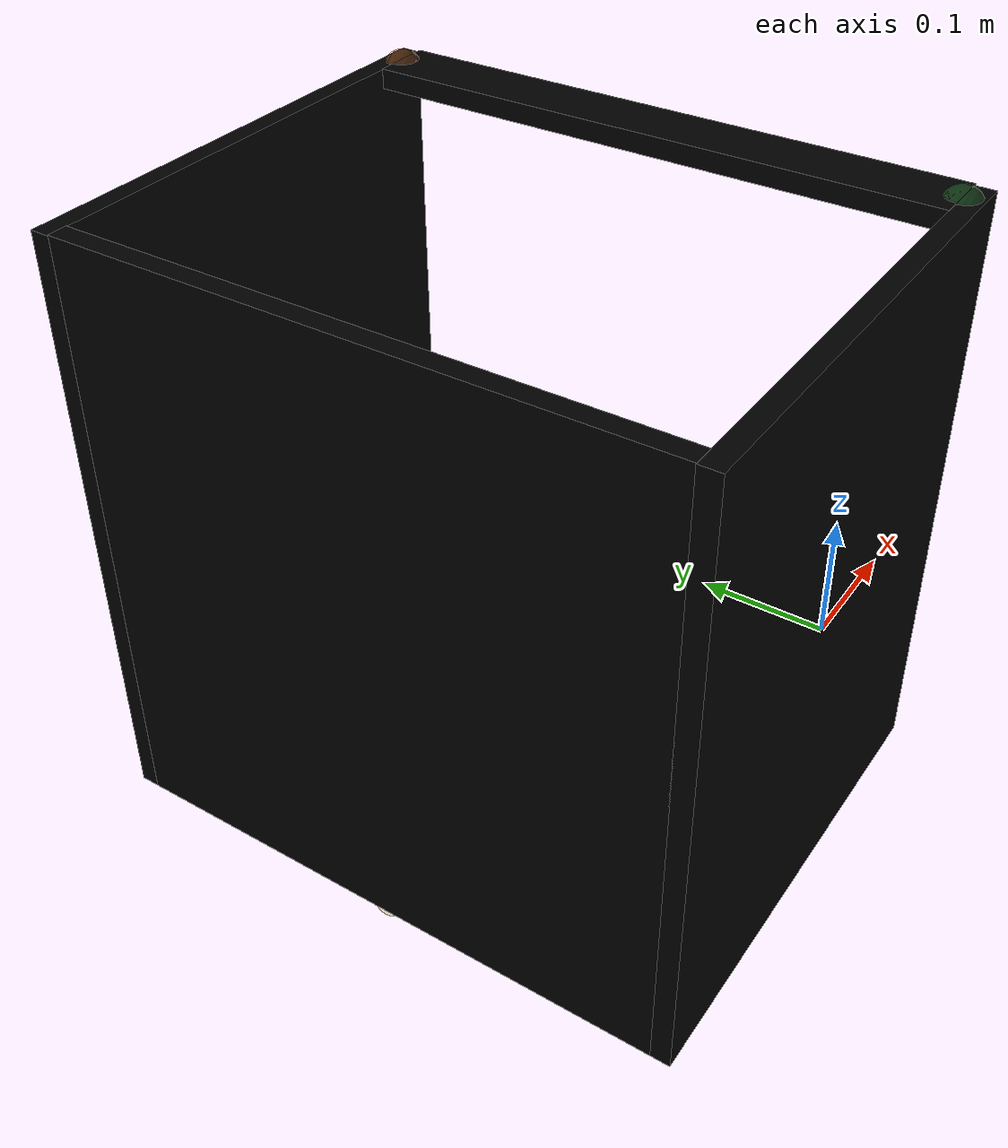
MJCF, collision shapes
<mujoco model="cabinet_akurum_0011">
    <custom>
        <numeric data="-0.34488 -0.256998 0.008911 -0.511311 -0.511311 0.488427 0.488427" name="0_part0_initpos"/>
        <numeric data="0.296876 -0.283407 0.008911 -0.011739 0.707009 0.011739 0.707009" name="4_part4_initpos"/>
        <numeric data="0.264367 0.272914 0.008911 0.709319 -0.0 0.0 0.704887" name="3_part3_initpos"/>
        <numeric data="0.677625 0.18326 0.008911 0.999946 0.0 -0.0 -0.010424" name="2_part2_initpos"/>
        <numeric data="-0.353744 0.26504 0.008369 0.498697 -0.498697 -0.5013 0.5013" name="1_part1_initpos"/>
    </custom>
    <asset>
        <mesh file="cabinet_akurum_0011/0.stl" name="part0" scale="0.00088 0.00088 0.00088"/>
        <mesh file="cabinet_akurum_0011/6.stl" name="part6" scale="0.00088 0.00088 0.00088"/>
        <mesh file="cabinet_akurum_0011/5.stl" name="part5" scale="0.00088 0.00088 0.00088"/>
        <mesh file="cabinet_akurum_0011/2.stl" name="part2" scale="0.00088 0.00088 0.00088"/>
        <mesh file="cabinet_akurum_0011/1.stl" name="part1" scale="0.00088 0.00088 0.00088"/>
    </asset>
    <equality>
        <weld active="false" body1="4_part4" body2="3_part3" solimp="1 1 0.5" solref="0.01 0.3"/>
        <weld active="false" body1="2_part2" body2="1_part1" solimp="1 1 0.5" solref="0.01 0.3"/>
        <weld active="false" body1="3_part3" body2="1_part1" solimp="1 1 0.5" solref="0.01 0.3"/>
        <weld active="false" body1="0_part0" body2="2_part2" solimp="1 1 0.5" solref="0.01 0.3"/>
        <weld active="false" body1="0_part0" body2="3_part3" solimp="1 1 0.5" solref="0.01 0.3"/>
    </equality>
    <worldbody>
        <body name="0_part0" pos="0.0 0.0 0.0" quat="1 0 0 0">
            <geom conaffinity="0" contype="0" density="0" mesh="part0" name="0_part0_mesh" pos="0.0 0.0 0.0"
                  rgba="0.82 0.71 0.55 1" type="mesh"/>
            <site name="0_part0_horizontal_radius_site" pos="0.0 0.0 0.0" quat="1 0 0 0" rgba="0 0 0 0" size="0.0176"/>
            <site name="0_part0_top_site" pos="0.0 0.0 0.2794" quat="1 0 0 0" rgba="0 0 0 0" size="0.0176"/>
            <site name="0_part0_bottom_site" pos="0.0 0.0 -0.2794" quat="1 0 0 0" rgba="0 0 0 0" size="0.0176"/>
            <site name="0_part0_corner_site8" pos="-0.22352 0.0089408 0.2794" quat="1 0 0 0" rgba="0 0 0 0"
                  size="0.0176"/>
            <site name="0_part0_corner_site7" pos="0.22352 0.0089408 0.2794" quat="1 0 0 0" rgba="0 0 0 0"
                  size="0.0176"/>
            <site name="0_part0_corner_site6" pos="0.22352 -0.0089408 0.2794" quat="1 0 0 0" rgba="0 0 0 0"
                  size="0.0176"/>
            <site name="0_part0_corner_site5" pos="-0.22352 -0.0089408 0.2794" quat="1 0 0 0" rgba="0 0 0 0"
                  size="0.0176"/>
            <site name="0_part0_corner_site4" pos="-0.22352 0.0089408 -0.2794" quat="1 0 0 0" rgba="0 0 0 0"
                  size="0.0176"/>
            <site name="0_part0_corner_site3" pos="0.22352 0.0089408 -0.2794" quat="1 0 0 0" rgba="0 0 0 0"
                  size="0.0176"/>
            <site name="0_part0_corner_site2" pos="0.22352 -0.0089408 -0.2794" quat="1 0 0 0" rgba="0 0 0 0"
                  size="0.0176"/>
            <site name="0_part0_corner_site1" pos="-0.22352 -0.0089408 -0.2794" quat="1 0 0 0" rgba="0 0 0 0"
                  size="0.0176"/>
            <site name="leftside-base,0,conn_site1" pos="0.0044704 0.00968 -0.2704592" quat="0.7071067 0.7071068 0 0"
                  rgba="0.9019 0.0980 0.2941 0.3" size="0.0176"/>
            <site name="leftside-topsupp,0,180,conn_site1" pos="0.19712000000000002 0.008976 0.2704592"
                  quat="0.7071067 0.7071068 0 0" rgba="0.2352 0.7058 0.2941 0.3" size="0.0176"/>
            <geom density="50" name="noviz_collision_0_part0_0"
                  pos="-0.0011166848000000002 0.0002710488 -0.00032344400000000004" quat="1 0 0 0" rgba="0 0 0 0"
                  size="0.22240327999999998 0.0092118488 0.27907651200000005" solref="0.001 1" type="box"/>
        </body>
        <body name="4_part4" pos="-0.2145792 0.2704592 0.0" quat="1 0 0 0">
            <geom conaffinity="0" contype="0" density="0" mesh="part6" name="4_part4_mesh" pos="0.0 0.0 0.0"
                  rgba="0.82 0.71 0.55 1" type="mesh"/>
            <site name="4_part4_horizontal_radius_site" pos="0.0 1.76e-10 0.0" quat="1 0 0 0" rgba="0 0 0 0"
                  size="0.0176"/>
            <site name="4_part4_top_site" pos="0.0 1.76e-10 0.2794" quat="1 0 0 0" rgba="0 0 0 0" size="0.0176"/>
            <site name="4_part4_bottom_site" pos="0.0 1.76e-10 -0.2794" quat="1 0 0 0" rgba="0 0 0 0" size="0.0176"/>
            <site name="4_part4_corner_site8" pos="-0.0089408 0.26151840017600003 0.2794" quat="1 0 0 0" rgba="0 0 0 0"
                  size="0.0176"/>
            <site name="4_part4_corner_site7" pos="0.0089408 0.26151840017600003 0.2794" quat="1 0 0 0" rgba="0 0 0 0"
                  size="0.0176"/>
            <site name="4_part4_corner_site6" pos="0.0089408 -0.26151839982400005 0.2794" quat="1 0 0 0" rgba="0 0 0 0"
                  size="0.0176"/>
            <site name="4_part4_corner_site5" pos="-0.0089408 -0.26151839982400005 0.2794" quat="1 0 0 0" rgba="0 0 0 0"
                  size="0.0176"/>
            <site name="4_part4_corner_site4" pos="-0.0089408 0.26151840017600003 -0.2794" quat="1 0 0 0" rgba="0 0 0 0"
                  size="0.0176"/>
            <site name="4_part4_corner_site3" pos="0.0089408 0.26151840017600003 -0.2794" quat="1 0 0 0" rgba="0 0 0 0"
                  size="0.0176"/>
            <site name="4_part4_corner_site2" pos="0.0089408 -0.26151839982400005 -0.2794" quat="1 0 0 0" rgba="0 0 0 0"
                  size="0.0176"/>
            <site name="4_part4_corner_site1" pos="-0.0089408 -0.26151839982400005 -0.2794" quat="1 0 0 0"
                  rgba="0 0 0 0" size="0.0176"/>
            <site name="backside-base,0,conn_site1" pos="0.0092751912 0.0 -0.28072" quat="0.7071067 0 -0.7071068 0"
                  rgba="1.0 0.8823 0.0980 0.3" size="0.0176"/>
            <geom density="50" name="noviz_collision_4_part4_0" pos="0.0 0.0 0.0" quat="1 0 0 0" rgba="0 0 0 0"
                  size="0.0089408 0.2615184 0.2794" solref="0.001 1" type="box"/>
        </body>
        <body name="3_part3" pos="0.0089408 0.2704592 -0.27045919674400004" quat="1 0 0 0">
            <geom conaffinity="0" contype="0" density="0" mesh="part5" name="3_part3_mesh" pos="0.0 0.0 0.0"
                  rgba="0.82 0.71 0.55 1" type="mesh"/>
            <site name="3_part3_horizontal_radius_site" pos="1.76e-10 1.76e-10 0.0" quat="1 0 0 0" rgba="0 0 0 0"
                  size="0.0176"/>
            <site name="3_part3_top_site" pos="1.76e-10 1.76e-10 0.008940803256000001" quat="1 0 0 0" rgba="0 0 0 0"
                  size="0.0176"/>
            <site name="3_part3_bottom_site" pos="1.76e-10 1.76e-10 -0.008940803256000001" quat="1 0 0 0" rgba="0 0 0 0"
                  size="0.0176"/>
            <site name="3_part3_corner_site8" pos="-0.21457919982399998 0.26151840017600003 0.008940803256000001"
                  quat="1 0 0 0" rgba="0 0 0 0" size="0.0176"/>
            <site name="3_part3_corner_site7" pos="0.214579200176 0.26151840017600003 0.008940803256000001"
                  quat="1 0 0 0" rgba="0 0 0 0" size="0.0176"/>
            <site name="3_part3_corner_site6" pos="0.214579200176 -0.26151839982400005 0.008940803256000001"
                  quat="1 0 0 0" rgba="0 0 0 0" size="0.0176"/>
            <site name="3_part3_corner_site5" pos="-0.21457919982399998 -0.26151839982400005 0.008940803256000001"
                  quat="1 0 0 0" rgba="0 0 0 0" size="0.0176"/>
            <site name="3_part3_corner_site4" pos="-0.21457919982399998 0.26151840017600003 -0.008940803256000001"
                  quat="1 0 0 0" rgba="0 0 0 0" size="0.0176"/>
            <site name="3_part3_corner_site3" pos="0.214579200176 0.26151840017600003 -0.008940803256000001"
                  quat="1 0 0 0" rgba="0 0 0 0" size="0.0176"/>
            <site name="3_part3_corner_site2" pos="0.214579200176 -0.26151839982400005 -0.008940803256000001"
                  quat="1 0 0 0" rgba="0 0 0 0" size="0.0176"/>
            <site name="3_part3_corner_site1" pos="-0.21457919982399998 -0.26151839982400005 -0.008940803256000001"
                  quat="1 0 0 0" rgba="0 0 0 0" size="0.0176"/>
            <site name="base-leftside,0,conn_site1" pos="-0.0044704 -0.2607792 0.0" quat="0.7071067 0.7071068 0 0"
                  rgba="0.9019 0.0980 0.2941 0.3" size="0.0176"/>
            <site name="base-rightside,0,conn_site1" pos="-0.0044704 0.26106080000000004 0.0"
                  quat="0.7071067 -0.7071068 0 0" rgba="0.2627 0.3882 0.8470 0.3" size="0.0176"/>
            <site name="base-backside,0,conn_site1" pos="-0.2142448 0.0 -0.0102608" quat="0.7071067 0 -0.7071068 0"
                  rgba="1.0 0.8823 0.0980 0.3" size="0.0176"/>
            <geom density="50" name="noviz_collision_3_part3_0" pos="0.0 0.0 0.0" quat="1 0 0 0" rgba="0 0 0 0"
                  size="0.2145792 0.2615184 0.0089408" solref="0.001 1" type="box"/>
        </body>
        <body name="2_part2" pos="0.19558 0.2704592 0.27045919674400004" quat="1 0 0 0">
            <geom conaffinity="0" contype="0" density="0" mesh="part2" name="2_part2_mesh" pos="0.0 0.0 0.0"
                  rgba="0.82 0.71 0.55 1" type="mesh"/>
            <site name="2_part2_horizontal_radius_site" pos="0.0 1.76e-10 0.0" quat="1 0 0 0" rgba="0 0 0 0"
                  size="0.0176"/>
            <site name="2_part2_top_site" pos="0.0 1.76e-10 0.008940803256000001" quat="1 0 0 0" rgba="0 0 0 0"
                  size="0.0176"/>
            <site name="2_part2_bottom_site" pos="0.0 1.76e-10 -0.008940803256000001" quat="1 0 0 0" rgba="0 0 0 0"
                  size="0.0176"/>
            <site name="2_part2_corner_site8" pos="-0.02794 0.26151840017600003 0.008940803256000001" quat="1 0 0 0"
                  rgba="0 0 0 0" size="0.0176"/>
            <site name="2_part2_corner_site7" pos="0.02794 0.26151840017600003 0.008940803256000001" quat="1 0 0 0"
                  rgba="0 0 0 0" size="0.0176"/>
            <site name="2_part2_corner_site6" pos="0.02794 -0.26151839982400005 0.008940803256000001" quat="1 0 0 0"
                  rgba="0 0 0 0" size="0.0176"/>
            <site name="2_part2_corner_site5" pos="-0.02794 -0.26151839982400005 0.008940803256000001" quat="1 0 0 0"
                  rgba="0 0 0 0" size="0.0176"/>
            <site name="2_part2_corner_site4" pos="-0.02794 0.26151840017600003 -0.008940803256000001" quat="1 0 0 0"
                  rgba="0 0 0 0" size="0.0176"/>
            <site name="2_part2_corner_site3" pos="0.02794 0.26151840017600003 -0.008940803256000001" quat="1 0 0 0"
                  rgba="0 0 0 0" size="0.0176"/>
            <site name="2_part2_corner_site2" pos="0.02794 -0.26151839982400005 -0.008940803256000001" quat="1 0 0 0"
                  rgba="0 0 0 0" size="0.0176"/>
            <site name="2_part2_corner_site1" pos="-0.02794 -0.26151839982400005 -0.008940803256000001" quat="1 0 0 0"
                  rgba="0 0 0 0" size="0.0176"/>
            <site name="topsupp-leftside,0,180,conn_site1" pos="0.0015400000000000001 -0.2614832 0.0"
                  quat="0.7071067 0.7071068 0 0" rgba="0.2352 0.7058 0.2941 0.3" size="0.0176"/>
            <site name="topsupp-rightside,0,180,conn_site1" pos="0.0015400000000000001 0.26150080000000003 0.0"
                  quat="0.7071067 -0.7071068 0 0" rgba="0.9607 0.5098 0.1921 0.3" size="0.0176"/>
            <geom density="50" name="noviz_collision_2_part2_0" pos="0.0 0.0 0.0" quat="1 0 0 0" rgba="0 0 0 0"
                  size="0.02794 0.2615184 0.0089408" solref="0.001 1" type="box"/>
        </body>
        <body name="1_part1" pos="0.0 0.540918396744 0.0" quat="1 0 0 0">
            <geom conaffinity="0" contype="0" density="0" mesh="part1" name="1_part1_mesh" pos="0.0 0.0 0.0"
                  rgba="0.82 0.71 0.55 1" type="mesh"/>
            <site name="1_part1_horizontal_radius_site" pos="0.0 0.0 0.0" quat="1 0 0 0" rgba="0 0 0 0" size="0.0176"/>
            <site name="1_part1_top_site" pos="0.0 0.0 0.2794" quat="1 0 0 0" rgba="0 0 0 0" size="0.0176"/>
            <site name="1_part1_bottom_site" pos="0.0 0.0 -0.2794" quat="1 0 0 0" rgba="0 0 0 0" size="0.0176"/>
            <site name="1_part1_corner_site8" pos="-0.22352 0.008940803256000001 0.2794" quat="1 0 0 0" rgba="0 0 0 0"
                  size="0.0176"/>
            <site name="1_part1_corner_site7" pos="0.22352 0.008940803256000001 0.2794" quat="1 0 0 0" rgba="0 0 0 0"
                  size="0.0176"/>
            <site name="1_part1_corner_site6" pos="0.22352 -0.008940803256000001 0.2794" quat="1 0 0 0" rgba="0 0 0 0"
                  size="0.0176"/>
            <site name="1_part1_corner_site5" pos="-0.22352 -0.008940803256000001 0.2794" quat="1 0 0 0" rgba="0 0 0 0"
                  size="0.0176"/>
            <site name="1_part1_corner_site4" pos="-0.22352 0.008940803256000001 -0.2794" quat="1 0 0 0" rgba="0 0 0 0"
                  size="0.0176"/>
            <site name="1_part1_corner_site3" pos="0.22352 0.008940803256000001 -0.2794" quat="1 0 0 0" rgba="0 0 0 0"
                  size="0.0176"/>
            <site name="1_part1_corner_site2" pos="0.22352 -0.008940803256000001 -0.2794" quat="1 0 0 0" rgba="0 0 0 0"
                  size="0.0176"/>
            <site name="1_part1_corner_site1" pos="-0.22352 -0.008940803256000001 -0.2794" quat="1 0 0 0" rgba="0 0 0 0"
                  size="0.0176"/>
            <site name="rightside-base,0,conn_site1" pos="0.0044704 -0.0093983912 -0.2704592"
                  quat="0.7071067 -0.7071068 0 0" rgba="0.2627 0.3882 0.8470 0.3" size="0.0176"/>
            <site name="rightside-topsupp,0,180,conn_site1" pos="0.19712000000000002 -0.0089583912 0.2704592"
                  quat="0.7071067 -0.7071068 0 0" rgba="0.9607 0.5098 0.1921 0.3" size="0.0176"/>
            <geom density="50" name="noviz_collision_1_part1_0"
                  pos="-0.0011166848000000002 -0.00027102239999999997 -0.00032344400000000004" quat="1 0 0 0"
                  rgba="0 0 0 0" size="0.22240327999999998 0.0086697512 0.27907651200000005" solref="0.001 1"
                  type="box"/>
        </body>
    </worldbody>
    <actuator/>
    <sensor/>
    <contact/>
    <default/>
</mujoco>
